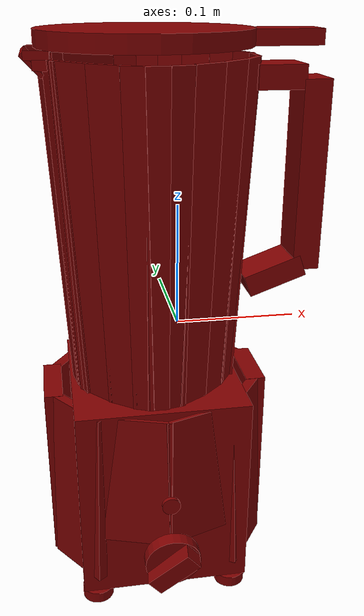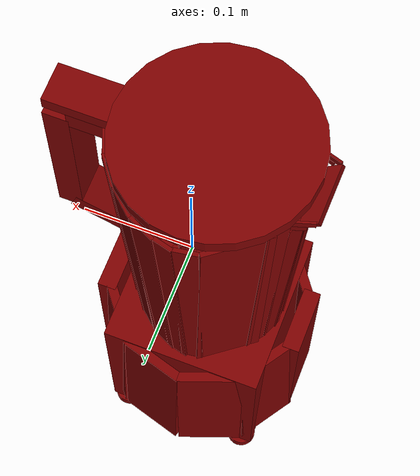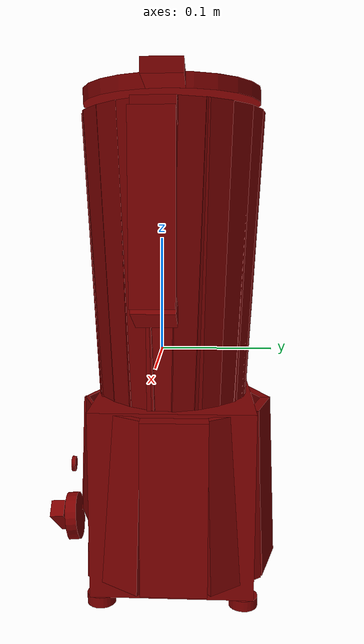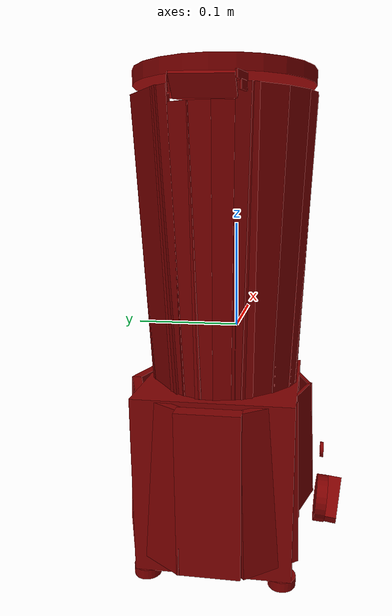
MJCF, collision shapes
<?xml version='1.0' encoding='UTF-8'?>
<mujoco model="model">
  <option timestep="0.002" gravity="0.0 0.0 -9.81"/>
  <compiler angle="radian"/>
  <asset>
    <mesh file="visuals/Blade001.obj" name="Blade001_vis"/>
    <mesh file="visuals/Body001.obj" name="Body001_vis"/>
    <mesh file="visuals/Button001.obj" name="Button001_vis"/>
    <mesh file="visuals/Jug001.obj" name="Jug001_vis"/>
    <mesh file="visuals/Jug001_Clear.obj" name="Jug001_Clear_vis"/>
    <mesh file="visuals/Knob001.obj" name="Knob001_vis"/>
    <mesh file="visuals/Lid001.obj" name="Lid001_vis"/>
    <texture file="visuals/T_BC001.png" name="Body001_material" type="2d"/>
    <material name="Body001_material" rgba="1 1 1 1.0" texture="Body001_material" shininess="0.1" specular="4"/>
    <texture file="visuals/T_BC001.png" name="Button001_material" type="2d"/>
    <material name="Button001_material" rgba="1 1 1 1.0" texture="Button001_material" shininess="0.1" specular="4"/>
    <texture file="visuals/T_BC001.png" name="Jug001_Clear_material" type="2d"/>
    <material name="Jug001_Clear_material" rgba="1 1 1 0.699999988079071" texture="Jug001_Clear_material" shininess="0.141421377658844" specular="0.3103448502657381"/>
    <texture file="visuals/T_BC001.png" name="Blade001_material" type="2d"/>
    <material name="Blade001_material" rgba="1 1 1 1.0" texture="Blade001_material" shininess="0.1" specular="4"/>
    <texture file="visuals/T_BC001.png" name="Jug001_material" type="2d"/>
    <material name="Jug001_material" rgba="1 1 1 1.0" texture="Jug001_material" shininess="0.1" specular="4"/>
    <texture file="visuals/T_BC001.png" name="Lid001_material" type="2d"/>
    <material name="Lid001_material" rgba="1 1 1 1.0" texture="Lid001_material" shininess="0.1" specular="4"/>
    <texture file="visuals/T_BC001.png" name="Knob001_material" type="2d"/>
    <material name="Knob001_material" rgba="1 1 1 1.0" texture="Knob001_material" shininess="0.1" specular="4"/>
  </asset>
  <default>
    <default class="visual">
      <geom conaffinity="0" contype="0" group="1" type="mesh"/>
    </default>
    <default class="collision">
      <geom group="0" rgba="0.5 0 0 0.5"/>
    </default>
    <default class="spawn">
      <geom group="0" rgba="1 1 1 0.5" contype="0" conaffinity="0"/>
      <site group="0" rgba="1 1 1 0.5"/>
    </default>
    <default class="region">
      <geom group="1" conaffinity="0" contype="0" rgba="0 1 0 0"/>
    </default>
  </default>
  <worldbody>
    <body>
      <body name="object">
        <geom mesh="Body001_vis" type="mesh" solimp="0.998 0.998 0.001" solref="0.001 1" friction="0.95 0.3 0.1" class="visual" material="Body001_material"/>
        <geom class="collision" type="box" pos="-0.02042541 0.01057764 -0.13568166" size="0.07114976644515991 0.07396972179412842 0.08590729534626007" quat="1.0 0.0 0.0 0.0"/>
        <geom class="collision" type="cylinder" pos="-0.07927304 -0.05410407 -0.22727646" size="0.01308267842978239 0.00483639445155859" quat="1.0 0.0 0.0 0.0"/>
        <geom class="collision" type="cylinder" pos="0.03833302 -0.05410407 -0.22727646" size="0.01308267842978239 0.00483639445155859" quat="1.0 0.0 0.0 0.0"/>
        <geom class="collision" type="cylinder" pos="-0.07927304 0.07581795 -0.22727646" size="0.01308267842978239 0.00483639445155859" quat="1.0 0.0 0.0 0.0"/>
        <geom class="collision" type="cylinder" pos="0.03833302 0.07581795 -0.22727646" size="0.01308267842978239 0.00483639445155859" quat="1.0 0.0 0.0 0.0"/>
        <geom class="collision" type="box" pos="-0.10676947 0.00986008 -0.12931117" size="0.007698316592723131 0.02908378839492798 0.07778923213481903" quat="1.0 0.0 0.0 0.0"/>
        <geom class="collision" type="box" pos="-0.09307648 0.05724273 -0.12931117" size="0.0043806531466543674 0.029083792120218277 0.07767295092344284" quat="0.9581294655799866 0.006108238827437162 0.020496506243944168 -0.28553542494773865"/>
        <geom class="collision" type="box" pos="-0.05130488 0.09121427 -0.12931117" size="0.00438065268099308 0.029083792120218277 0.07767295092344284" quat="0.8213495016098022 0.012194070965051651 0.01757046952843666 -0.5700241923332214"/>
        <geom class="collision" type="box" pos="0.00247312 0.09383306 -0.12931117" size="0.0043806531466543674 0.02908378094434738 0.07767295092344284" quat="0.6026906967163086 0.017064303159713745 0.01289287582039833 -0.7976882457733154"/>
        <geom class="collision" type="box" pos="0.04734783 0.06408088 -0.12931117" size="0.004380653612315655 0.02908378839492798 0.07767295092344284" quat="0.3239506483078003 0.020233428105711937 0.006930013187229633 -0.9458321928977966"/>
        <geom class="collision" type="box" pos="0.06587125 0.01352581 -0.12931117" size="0.008447176776826382 0.02927297353744507 0.07778921723365784" quat="1.0 0.0 0.0 0.0"/>
        <geom class="collision" type="box" pos="0.05084122 -0.03817556 -0.12931117" size="0.0043806531466543674 0.029083792120218277 0.07767295092344284" quat="0.29940521717071533 -0.020405719056725502 0.0064049335196614265 0.9538863301277161"/>
        <geom class="collision" type="box" pos="0.00693413 -0.06749455 -0.10871787" size="0.0016447921516373754 0.02908378653228283 0.05694369226694107" quat="0.5818799734115601 -0.017391711473464966 0.012447686865925789 0.8129934072494507"/>
        <geom class="collision" type="box" pos="-0.04462788 -0.06848730 -0.10930674" size="0.0015786336734890938 0.029083790257573128 0.05753026157617569" quat="0.8063479661941528 -0.012643959373235703 0.01724955067038536 0.5910546183586121"/>
        <geom class="collision" type="box" pos="-0.08972238 -0.04093677 -0.12931117" size="0.004380652215331793 0.02908378653228283 0.07767295092344284" quat="0.9504324793815613 -0.006635752972215414 0.02033185586333275 0.3101945221424103"/>
        <body name="Button001">
          <joint axis="0.0 1.0 0.0" pos="-0.04503846 -0.08525209 -0.15513922" limited="true" name="Button001_joint" range="0.0 0.0005" type="slide" damping="1" frictionloss="1" armature=".01" stiffness="0.05"/>
          <geom mesh="Button001_vis" type="mesh" solimp="0.998 0.998 0.001" solref="0.001 1" friction="0.95 0.3 0.1" class="visual" material="Button001_material"/>
          <geom class="collision" type="cylinder" pos="-0.01981876 -0.08815787 -0.12011459" size="0.007343614939600229 0.0016827437793835998" quat="0.7071067094802856 0.7071068286895752 0.0 0.0"/>
        </body>
        <body name="Jug001_Clear">
          <geom class="region" name="reg_int" type="box" pos="-0.027018065 0.002805199999999999 0.11259171" size="0.041492835 0.030621879999999997 0.07583"/>
          <joint axis="0.0 0.0 1.0" pos="0.00079143 0.00868907 0.08458982" limited="true" name="Jug001_Clear_joint" range="0.0 0.1" type="slide" damping="1" frictionloss="1" armature=".01" stiffness="0.05"/>
          <geom mesh="Jug001_Clear_vis" type="mesh" solimp="0.998 0.998 0.001" solref="0.001 1" friction="0.95 0.3 0.1" class="visual" material="Jug001_Clear_material"/>
          <geom class="collision" type="box" pos="-0.05911675 0.06439759 0.08195866" size="0.028023838996887207 0.0020834733732044697 0.13005328178405762" quat="0.9469504356384277 -0.02456554025411606 -0.008309957571327686 0.3203316628932953"/>
          <geom class="collision" type="box" pos="0.00260058 0.07604367 0.08192693" size="0.012392974458634853 0.0014961141860112548 0.12993013858795166" quat="0.9747089147567749 -0.025285642594099045 0.00575824873521924 -0.22196851670742035"/>
          <geom class="collision" type="box" pos="-0.02946256 0.08153011 0.08165492" size="0.009814273566007614 0.0016803478356450796 0.1300542801618576" quat="0.996727466583252 -0.025856804102659225 -0.0019861599430441856 0.07656250149011612"/>
          <geom class="collision" type="box" pos="0.10180768 -0.00152560 0.12173009" size="0.010741529986262321 0.01777033507823944 0.0739496573805809" quat="1.0 0.0 0.0 0.0"/>
          <geom class="collision" type="box" pos="0.07689810 -0.00152560 0.04301011" size="0.008844220079481602 0.01777033880352974 0.024057047441601753" quat="0.5734533071517944 -4.337584148605229e-15 -0.8192382454872131 -1.1007189471001766e-07"/>
          <geom class="collision" type="box" pos="0.07434225 -0.00152562 0.19721279" size="0.018335478380322456 0.017770294100046158 0.008909444324672222" quat="1.0 0.0 0.0 0.0"/>
          <geom class="collision" type="box" pos="-0.01363651 0.08146332 0.08171252" size="0.009814273566007614 0.0016803450416773558 0.1300542801618576" quat="0.9917929768562317 -0.025728821754455566 0.0032478109933435917 -0.1251964271068573"/>
          <geom class="collision" type="box" pos="0.02181979 0.06321589 0.08189169" size="0.013895096257328987 0.001496114069595933 0.13005328178405762" quat="0.9332175850868225 -0.02420927956700325 0.009296861477196217 -0.3583747446537018"/>
          <geom class="collision" type="box" pos="0.03893989 0.04498452 0.08182188" size="0.013895098119974136 0.0014961148845031857 0.1301158219575882" quat="0.8938452005386353 -0.023187892511487007 0.011612174101173878 -0.44762516021728516"/>
          <geom class="collision" type="box" pos="0.04954776 0.02614470 0.08176681" size="0.013895098119974136 0.001496114069595933 0.13005328178405762" quat="0.8285778164863586 -0.021494749933481216 0.01450851745903492 -0.5592730045318604"/>
          <geom class="collision" type="box" pos="0.05162664 0.00251551 0.08169228" size="0.013895095326006413 0.0014961144188418984 0.1301158219575882" quat="0.6938533186912537 -0.017999760806560516 0.018668951466679573 -0.7196492552757263"/>
          <geom class="collision" type="box" pos="0.04433440 -0.01925489 0.08190767" size="0.013895101845264435 0.0014961172128096223 0.13005328178405762" quat="0.4744383990764618 -0.012307754717767239 0.02282630279660225 -0.8799066543579102"/>
          <geom class="collision" type="box" pos="0.02778749 -0.03908959 0.08200157" size="0.013895097188651562 0.0014961173292249441 0.13005328178405762" quat="0.3675457537174225 -0.009534777142107487 0.024116583168506622 -0.9296438097953796"/>
          <geom class="collision" type="box" pos="0.00730769 -0.05532394 0.08214959" size="0.013895098119974136 0.0014961144188418984 0.12987081706523895" quat="0.27956363558769226 -0.007252366282045841 0.02489827573299408 -0.9597768783569336"/>
          <geom class="collision" type="box" pos="-0.01035215 -0.06387544 0.08189673" size="0.00841239932924509 0.001496114069595933 0.12990111112594604" quat="0.10235937684774399 -0.0026553883217275143 0.02579682134091854 -0.9944093823432922"/>
          <geom class="collision" type="box" pos="-0.02532836 -0.06565578 0.08174028" size="0.00841239932924509 0.0014961144188418984 0.13000434637069702" quat="0.014749111607670784 -0.0003826175525318831 -0.025930186733603477 0.9995548725128174"/>
          <geom class="collision" type="box" pos="-0.03884549 -0.06317118 0.08182737" size="0.008412400260567665 0.0014961141860112548 0.12996487319469452" quat="0.18885262310504913 -0.004899164661765099 -0.025466036051511765 0.9816629886627197"/>
          <geom class="collision" type="box" pos="-0.05541575 -0.05282766 0.08190267" size="0.013023199513554573 0.0014961143024265766 0.13005898892879486" quat="0.3136133849620819 -0.008135673590004444 -0.024623794481158257 0.9491965770721436"/>
          <geom class="collision" type="box" pos="-0.07621097 -0.03260189 0.08200802" size="0.01790199801325798 0.0014961148845031857 0.13000606000423431" quat="0.4126756191253662 -0.010705524124205112 -0.023620188236236572 0.9105088114738464"/>
          <geom class="collision" type="box" pos="-0.08040297 0.04639342 0.08196995" size="0.009814275428652763 0.001680344925262034 0.1299208700656891" quat="0.8943629860877991 -0.02320133149623871 -0.011585312895476818 0.44658970832824707"/>
          <geom class="collision" type="box" pos="-0.08907313 0.03058378 0.07538246" size="0.009814274497330189 0.0016803450416773558 0.12314633280038834" quat="0.835515558719635 -0.02167471870779991 -0.014238237403333187 0.5488545298576355"/>
          <geom class="collision" type="box" pos="-0.09261387 0.01573712 0.07518756" size="0.009814275428652763 0.0016803451580926776 0.12331690639257431" quat="0.724690854549408 -0.018799737095832825 -0.017863113433122635 0.6885859966278076"/>
          <geom class="collision" type="box" pos="-0.09170040 -0.00161858 0.07531489" size="0.009814274497330189 0.0016803448088467121 0.1232306957244873" quat="0.6293444037437439 -0.016326285898685455 -0.020148780196905136 0.7766937017440796"/>
          <geom class="collision" type="box" pos="-0.08724716 -0.01795014 0.08198807" size="0.009814273566007614 0.0016803448088467121 0.12987521290779114" quat="0.5572676658630371 -0.014456488192081451 -0.02152976021170616 0.8299278616905212"/>
          <geom class="collision" type="box" pos="-0.10504430 0.01151608 0.20798914" size="0.0253608338534832 0.0016803448088467121 0.010355044156312943" quat="0.6644766330718994 -0.25481677055358887 -0.2662017047405243 0.6501352787017822"/>
          <geom class="collision" type="box" pos="-0.10047988 0.03951485 0.21423782" size="0.009460925124585629 0.0009152903221547604 0.0032383257057517767" quat="0.9881901741027832 0.0 0.0 0.15323251485824585"/>
          <geom class="collision" type="box" pos="-0.09747223 0.04019827 0.20782709" size="0.006173263303935528 0.0009152903221547604 0.0036670449189841747" quat="0.9871951937675476 0.0 0.0 0.15951703488826752"/>
          <geom class="collision" type="box" pos="-0.10187519 -0.01728777 0.21423782" size="0.009460925124585629 0.0009152903221547604 0.0032383257057517767" quat="0.9885324835777283 0.0 -0.0 -0.15100839734077454"/>
          <geom class="collision" type="box" pos="-0.09901945 -0.01845303 0.20782709" size="0.006173263303935528 0.0009152903221547604 0.0036670449189841747" quat="0.9894733428955078 0.0 -0.0 -0.14471545815467834"/>
          <body name="Blade001">
            <joint axis="0.0 0.0 1.0" pos="-0.02052082 0.00847459 0.01682382" limited="false" name="Blade001_joint" range="0 360" type="hinge" damping="1" frictionloss="1" armature=".01" stiffness="0.05"/>
            <geom mesh="Blade001_vis" type="mesh" solimp="0.998 0.998 0.001" solref="0.001 1" friction="0.95 0.3 0.1" class="visual" material="Blade001_material"/>
            <geom class="collision" type="cylinder" pos="-0.02076192 0.00860307 0.01564751" size="0.005578401032835245 0.009748686105012894" quat="1.0 0.0 0.0 0.0"/>
            <geom class="collision" type="box" pos="-0.04265455 0.00825935 0.01769042" size="0.005888754967600107 0.005354186054319143 0.0005539986887015402" quat="0.9403565526008606 0.22859342396259308 0.2510433495044708 0.021257082000374794"/>
            <geom class="collision" type="box" pos="-0.03521201 0.00907233 0.01427903" size="0.002375200856477022 0.005354185588657856 0.0005539986887015402" quat="0.9515479207038879 0.15689902007579803 0.2630090117454529 0.02766765095293522"/>
            <geom class="collision" type="box" pos="-0.03051270 0.00940451 0.01282373" size="0.002375200856477022 0.005354185588657856 0.0005539986887015402" quat="0.9828904867172241 0.15931963920593262 0.09243089705705643 -0.00021640739578288049"/>
            <geom class="collision" type="box" pos="-0.02577794 0.00949904 0.01218187" size="0.002375200856477022 0.005354185588657856 0.0005539986887015402" quat="0.9911357164382935 0.09542809426784515 0.09225142747163773 0.005761029198765755"/>
            <geom class="collision" type="box" pos="-0.01333908 0.00788426 0.01245780" size="0.002375201089307666 0.005354185588657856 0.0005539986887015402" quat="0.9974440336227417 -0.06621213257312775 0.0006647424306720495 0.026849370449781418"/>
            <geom class="collision" type="box" pos="-0.00857405 0.00817717 0.01282037" size="0.0023752006236463785 0.005354185588657856 0.0005539987469092011" quat="0.9935071468353271 -0.08202355355024338 -0.07651028037071228 -0.019022971391677856"/>
            <geom class="collision" type="box" pos="-0.00426517 0.00770388 0.01361521" size="0.002375200856477022 0.005354186054319143 0.0005539986887015402" quat="0.985020101070404 -0.1533612459897995 -0.07494162023067474 -0.02448371797800064"/>
            <geom class="collision" type="box" pos="0.00060961 0.00783374 0.01519256" size="0.002375201089307666 0.005354186054319143 0.0005539986887015402" quat="0.957770824432373 -0.15528972446918488 -0.24198324978351593 0.0020541767589747906"/>
            <geom class="collision" type="box" pos="0.00469122 0.00816380 0.01721432" size="0.002375200856477022 0.005354185588657856 0.0005539986887015402" quat="0.9437424540519714 -0.2432917356491089 -0.21870483458042145 0.04824477806687355"/>
            <geom class="collision" type="box" pos="0.00715111 0.00869347 0.01893833" size="0.002375200856477022 0.005354185588657856 0.0005539986887015402" quat="0.8137325048446655 -0.31561368703842163 -0.3493519723415375 0.340852826833725"/>
            <geom class="collision" type="box" pos="-0.02231131 0.02349328 0.02043260" size="0.002061778213828802 0.005354185588657856 0.0005539987469092011" quat="0.7475223541259766 0.29476454854011536 0.07653047889471054 -0.5903111696243286"/>
            <geom class="collision" type="box" pos="-0.02183516 0.01964069 0.01909816" size="0.002375200856477022 0.005354185588657856 0.0005539986887015402" quat="0.7485984563827515 0.2202669084072113 0.013303541578352451 -0.6252246499061584"/>
            <geom class="collision" type="box" pos="-0.02110768 0.01589881 0.01835756" size="0.002375200856477022 0.005354185122996569 0.0005539986887015402" quat="0.7479897737503052 0.18121476471424103 -0.03297616168856621 -0.6376402378082275"/>
            <geom class="collision" type="box" pos="-0.02084015 0.00691306 0.01769365" size="0.002375200856477022 0.005354185588657856 0.0005539986887015402" quat="0.7766215205192566 -0.04996641352772713 0.0434492826461792 -0.6264778971672058"/>
            <geom class="collision" type="box" pos="-0.01982181 0.00222140 0.01786771" size="0.002375200856477022 0.005354185588657856 0.0005539986887015402" quat="0.7438734173774719 -0.11205487698316574 -0.005037742666900158 -0.6588404178619385"/>
            <geom class="collision" type="box" pos="-0.01957814 -0.00207446 0.01885106" size="0.002375200856477022 0.005354185122996569 0.0005539986887015402" quat="0.7338717579841614 -0.16533643007278442 0.04242377728223801 -0.657492458820343"/>
            <geom class="collision" type="box" pos="-0.01859206 -0.00667258 0.02074927" size="0.002375200856477022 0.005354185588657856 0.0005539986887015402" quat="0.7303425669670105 -0.2751429080963135 -0.08346966654062271 -0.6196200251579285"/>
            <geom class="collision" type="box" pos="-0.01819240 -0.01086244 0.02283526" size="0.002375200856477022 0.005354185588657856 0.0005539986887015402" quat="0.7495883703231812 -0.3710985481739044 -0.09950321167707443 -0.538982629776001"/>
            <geom class="collision" type="box" pos="-0.01714387 -0.01242056 0.02436394" size="0.002375200856477022 0.005354185588657856 0.0005539986887015402" quat="0.8404426574707031 -0.4668102562427521 -0.06121203675866127 -0.26832324266433716"/>
            <geom class="collision" type="box" pos="-0.02293829 0.02692579 0.02252475" size="0.002061778213828802 0.005354185588657856 0.0005539987469092011" quat="0.740454375743866 0.31209465861320496 0.06276106834411621 -0.59193354845047"/>
            <geom class="collision" type="box" pos="-0.02420297 0.03007707 0.02487276" size="0.002061778213828802 0.005354185122996569 0.0005539987469092011" quat="0.7192190885543823 0.35832902789115906 0.025174571201205254 -0.5947188138961792"/>
          </body>
          <body name="Jug001">
            <geom mesh="Jug001_vis" type="mesh" solimp="0.998 0.998 0.001" solref="0.001 1" friction="0.95 0.3 0.1" class="visual" material="Jug001_material"/>
            <geom class="collision" type="box" pos="-0.05911675 0.06439759 0.08195866" size="0.028023838996887207 0.0020834733732044697 0.13005328178405762" quat="0.9469504356384277 -0.02456554025411606 -0.008309957571327686 0.3203316628932953"/>
            <geom class="collision" type="box" pos="0.00260058 0.07604367 0.08192693" size="0.012392974458634853 0.0014961141860112548 0.12993013858795166" quat="0.9747089147567749 -0.025285642594099045 0.00575824873521924 -0.22196851670742035"/>
            <geom class="collision" type="box" pos="-0.02946256 0.08153011 0.08165492" size="0.009814273566007614 0.0016803478356450796 0.1300542801618576" quat="0.996727466583252 -0.025856804102659225 -0.0019861599430441856 0.07656250149011612"/>
            <geom class="collision" type="box" pos="0.10180768 -0.00152560 0.12173009" size="0.010741529986262321 0.01777033507823944 0.0739496573805809" quat="1.0 0.0 0.0 0.0"/>
            <geom class="collision" type="box" pos="0.07689810 -0.00152560 0.04301011" size="0.008844220079481602 0.01777033880352974 0.024057047441601753" quat="0.5734533071517944 -4.337584148605229e-15 -0.8192382454872131 -1.1007189471001766e-07"/>
            <geom class="collision" type="box" pos="0.07434225 -0.00152562 0.19721279" size="0.018335478380322456 0.017770294100046158 0.008909444324672222" quat="1.0 0.0 0.0 0.0"/>
            <geom class="collision" type="cylinder" pos="-0.02037487 0.00834738 -0.00868030" size="0.017309583723545074 0.013339472934603691" quat="1.0 0.0 0.0 0.0"/>
            <geom class="collision" type="cylinder" pos="-0.01921554 0.00850766 -0.04367529" size="0.04706339165568352 0.003497780067846179" quat="1.0 0.0 0.0 0.0"/>
            <geom class="collision" type="box" pos="-0.01363651 0.08146332 0.08171252" size="0.009814273566007614 0.0016803450416773558 0.1300542801618576" quat="0.9917929768562317 -0.025728821754455566 0.0032478109933435917 -0.1251964271068573"/>
            <geom class="collision" type="box" pos="0.02181979 0.06321589 0.08189169" size="0.013895096257328987 0.001496114069595933 0.13005328178405762" quat="0.9332175850868225 -0.02420927956700325 0.009296861477196217 -0.3583747446537018"/>
            <geom class="collision" type="box" pos="0.03893989 0.04498452 0.08182188" size="0.013895098119974136 0.0014961148845031857 0.1301158219575882" quat="0.8938452005386353 -0.023187892511487007 0.011612174101173878 -0.44762516021728516"/>
            <geom class="collision" type="box" pos="0.04954776 0.02614470 0.08176681" size="0.013895098119974136 0.001496114069595933 0.13005328178405762" quat="0.8285778164863586 -0.021494749933481216 0.01450851745903492 -0.5592730045318604"/>
            <geom class="collision" type="box" pos="0.05162664 0.00251551 0.08169228" size="0.013895095326006413 0.0014961144188418984 0.1301158219575882" quat="0.6938533186912537 -0.017999760806560516 0.018668951466679573 -0.7196492552757263"/>
            <geom class="collision" type="box" pos="0.04433440 -0.01925489 0.08190767" size="0.013895101845264435 0.0014961172128096223 0.13005328178405762" quat="0.4744383990764618 -0.012307754717767239 0.02282630279660225 -0.8799066543579102"/>
            <geom class="collision" type="box" pos="0.02778749 -0.03908959 0.08200157" size="0.013895097188651562 0.0014961173292249441 0.13005328178405762" quat="0.3675457537174225 -0.009534777142107487 0.024116583168506622 -0.9296438097953796"/>
            <geom class="collision" type="box" pos="0.00730769 -0.05532394 0.08214959" size="0.013895098119974136 0.0014961144188418984 0.12987081706523895" quat="0.27956363558769226 -0.007252366282045841 0.02489827573299408 -0.9597768783569336"/>
            <geom class="collision" type="box" pos="-0.01035215 -0.06387544 0.08189673" size="0.00841239932924509 0.001496114069595933 0.12990111112594604" quat="0.10235937684774399 -0.0026553883217275143 0.02579682134091854 -0.9944093823432922"/>
            <geom class="collision" type="box" pos="-0.02532836 -0.06565578 0.08174028" size="0.00841239932924509 0.0014961144188418984 0.13000434637069702" quat="0.014749111607670784 -0.0003826175525318831 -0.025930186733603477 0.9995548725128174"/>
            <geom class="collision" type="box" pos="-0.03884549 -0.06317118 0.08182737" size="0.008412400260567665 0.0014961141860112548 0.12996487319469452" quat="0.18885262310504913 -0.004899164661765099 -0.025466036051511765 0.9816629886627197"/>
            <geom class="collision" type="box" pos="-0.05541575 -0.05282766 0.08190267" size="0.013023199513554573 0.0014961143024265766 0.13005898892879486" quat="0.3136133849620819 -0.008135673590004444 -0.024623794481158257 0.9491965770721436"/>
            <geom class="collision" type="box" pos="-0.07621097 -0.03260189 0.08200802" size="0.01790199801325798 0.0014961148845031857 0.13000606000423431" quat="0.4126756191253662 -0.010705524124205112 -0.023620188236236572 0.9105088114738464"/>
            <geom class="collision" type="box" pos="-0.08040297 0.04639342 0.08196995" size="0.009814275428652763 0.001680344925262034 0.1299208700656891" quat="0.8943629860877991 -0.02320133149623871 -0.011585312895476818 0.44658970832824707"/>
            <geom class="collision" type="box" pos="-0.08907313 0.03058378 0.07538246" size="0.009814274497330189 0.0016803450416773558 0.12314633280038834" quat="0.835515558719635 -0.02167471870779991 -0.014238237403333187 0.5488545298576355"/>
            <geom class="collision" type="box" pos="-0.09261387 0.01573712 0.07518756" size="0.009814275428652763 0.0016803451580926776 0.12331690639257431" quat="0.724690854549408 -0.018799737095832825 -0.017863113433122635 0.6885859966278076"/>
            <geom class="collision" type="box" pos="-0.09170040 -0.00161858 0.07531489" size="0.009814274497330189 0.0016803448088467121 0.1232306957244873" quat="0.6293444037437439 -0.016326285898685455 -0.020148780196905136 0.7766937017440796"/>
            <geom class="collision" type="box" pos="-0.08724716 -0.01795014 0.08198807" size="0.009814273566007614 0.0016803448088467121 0.12987521290779114" quat="0.5572676658630371 -0.014456488192081451 -0.02152976021170616 0.8299278616905212"/>
            <geom class="collision" type="box" pos="-0.10504430 0.01151608 0.20798914" size="0.0253608338534832 0.0016803448088467121 0.010355044156312943" quat="0.6644766330718994 -0.25481677055358887 -0.2662017047405243 0.6501352787017822"/>
            <geom class="collision" type="box" pos="-0.10047988 0.03951485 0.21423782" size="0.009460925124585629 0.0009152903221547604 0.0032383257057517767" quat="0.9881901741027832 0.0 0.0 0.15323251485824585"/>
            <geom class="collision" type="box" pos="-0.09747223 0.04019827 0.20782709" size="0.006173263303935528 0.0009152903221547604 0.0036670449189841747" quat="0.9871951937675476 0.0 0.0 0.15951703488826752"/>
            <geom class="collision" type="box" pos="-0.10187519 -0.01728777 0.21423782" size="0.009460925124585629 0.0009152903221547604 0.0032383257057517767" quat="0.9885324835777283 0.0 -0.0 -0.15100839734077454"/>
            <geom class="collision" type="box" pos="-0.09901945 -0.01845303 0.20782709" size="0.006173263303935528 0.0009152903221547604 0.0036670449189841747" quat="0.9894733428955078 0.0 -0.0 -0.14471545815467834"/>
            <geom class="collision" type="cylinder" pos="-0.01921554 0.00850766 -0.03841021" size="0.03889162465929985 0.0028904490172863007" quat="1.0 0.0 0.0 0.0"/>
            <geom class="collision" type="cylinder" pos="-0.01921554 0.00850766 -0.03287265" size="0.03192101791501045 0.0023723894264549017" quat="1.0 0.0 0.0 0.0"/>
            <geom class="collision" type="cylinder" pos="-0.01921554 0.00850766 -0.02795564" size="0.026319386437535286 0.0019560728687793016" quat="1.0 0.0 0.0 0.0"/>
          </body>
          <body name="Lid001">
            <joint axis="0.0 0.0 1.0" pos="0.00211417 0.00752695 0.21169062" limited="true" name="Lid001_joint" range="0.0 0.1" type="slide" damping="1" frictionloss="1" armature=".01" stiffness="0.05"/>
            <geom mesh="Lid001_vis" type="mesh" solimp="0.998 0.998 0.001" solref="0.001 1" friction="0.95 0.3 0.1" class="visual" material="Lid001_material"/>
            <geom class="collision" type="box" pos="0.07637794 0.00587810 0.22388908" size="0.030511468648910522 0.016071908175945282 0.005857323762029409" quat="1.0 0.0 0.0 0.0"/>
            <geom class="collision" type="cylinder" pos="-0.02365407 0.00762699 0.22435665" size="0.08035063743591309 0.006332592573016882" quat="1.0 0.0 0.0 0.0"/>
          </body>
        </body>
        <body name="Knob001">
          <joint axis="-1.0883673370624386e-18 0.9950984716415405 0.09888920187950134" pos="-0.01927631 -0.09581358 -0.17462131" limited="true" name="Knob001_joint" range="0.0 4.71238898038469" type="hinge" damping="0.05" armature="0.001"/>
          <geom mesh="Knob001_vis" type="mesh" solimp="0.998 0.998 0.001" solref="0.001 1" friction="0.95 0.3 0.1" class="visual" material="Knob001_material"/>
          <geom class="collision" type="cylinder" pos="-0.01871967 -0.08852132 -0.17376384" size="0.023056725040078163 0.005283305421471596" quat="0.6761780381202698 0.7367382645606995 -6.723511375239752e-18 6.723515097552509e-18"/>
          <geom class="collision" type="box" pos="-0.01948381 -0.10019795 -0.17414394" size="0.00802884716540575 0.006722955498844385 0.021096782758831978" quat="0.9083757996559143 0.058258578181266785 0.41322752833366394 -0.026502244174480438"/>
        </body>
        <geom class="region" name="reg_main" type="box" pos="-0.020539880000000003 0.010720274999999994 0.0" size="0.09644665 0.099013415 0.23181493"/>
      </body>
    </body>
  </worldbody>
  <actuator>
    <motor name="Button001_joint_actuator" joint="Button001_joint" gear="0.5"/>
    <motor name="Jug001_Clear_joint_actuator" joint="Jug001_Clear_joint" gear="0.5"/>
    <motor name="Knob001_joint_actuator" joint="Knob001_joint" gear="0.5"/>
    <motor name="Blade001_joint_actuator" joint="Blade001_joint" gear="50"/>
    <motor name="Lid001_joint_actuator" joint="Lid001_joint" gear="0.5"/>
  </actuator>
</mujoco>
